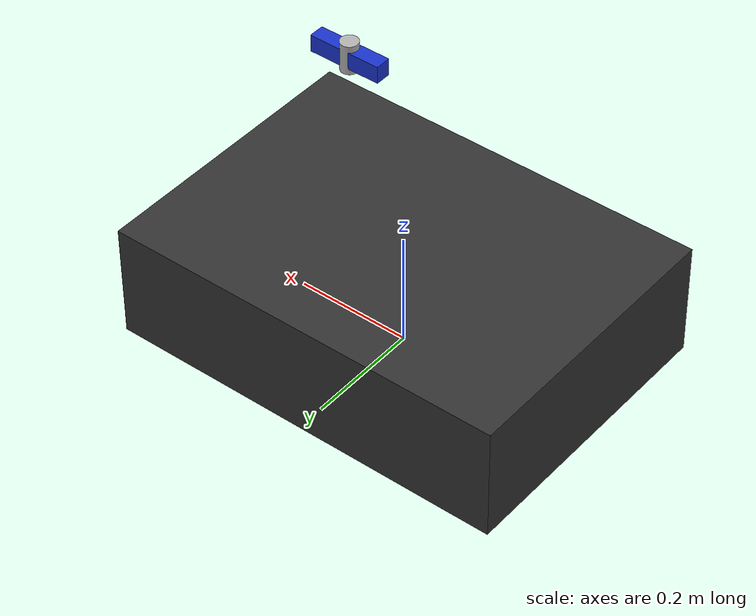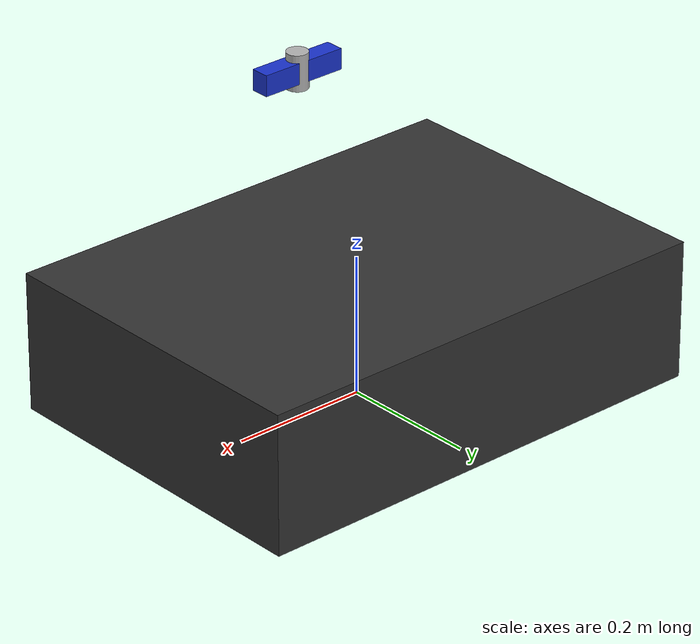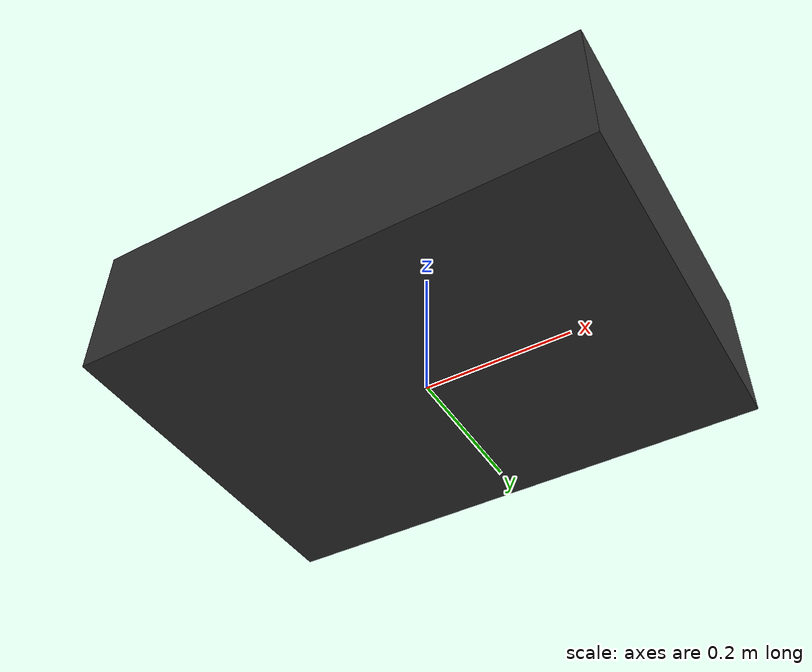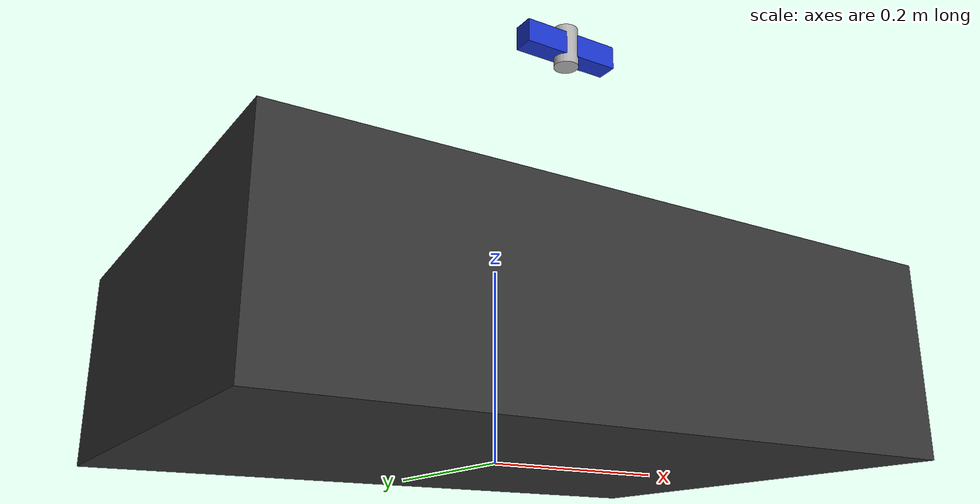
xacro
<?xml version="1.0"?>
<robot xmlns:xacro="http://www.ros.org/wiki/xacro" name="yardbot">

  <!-- ═══════════════════════════════════════════
       PARAMETERS  (easy to tweak in one place)
       ═══════════════════════════════════════════ -->

  <!-- Robot footprint (approximate lawnmower-scale placeholder) -->
  <xacro:property name="base_length"  value="0.70"/>   <!-- m, front-back -->
  <xacro:property name="base_width"   value="0.50"/>   <!-- m, left-right  -->
  <xacro:property name="base_height"  value="0.20"/>   <!-- m, vertical    -->

  <!-- Camera mount position relative to base_link -->
  <xacro:property name="cam_x"    value="0.10"/>  <!-- forward of centre  -->
  <xacro:property name="cam_y"    value="0.0"/>   <!-- centred            -->
  <xacro:property name="cam_z"    value="0.50"/>  <!-- height above ground -->

  <!-- Camera body size (D455 approximate) -->
  <xacro:property name="cam_l"    value="0.124"/>
  <xacro:property name="cam_w"    value="0.026"/>
  <xacro:property name="cam_h"    value="0.029"/>

  <!-- ═══════════════════════════════════════════
       MATERIALS
       ═══════════════════════════════════════════ -->

  <material name="dark_grey">
    <color rgba="0.2 0.2 0.2 1.0"/>
  </material>

  <material name="light_grey">
    <color rgba="0.7 0.7 0.7 1.0"/>
  </material>

  <material name="realsense_blue">
    <color rgba="0.1 0.2 0.8 1.0"/>
  </material>

  <link name="base_link">
    <visual>
      <origin xyz="0 0 ${base_height/2}" rpy="0 0 0"/>
      <geometry>
        <box size="${base_length} ${base_width} ${base_height}"/>
      </geometry>
      <material name="dark_grey"/>
    </visual>
    <collision>
      <origin xyz="0 0 ${base_height/2}" rpy="0 0 0"/>
      <geometry>
        <box size="${base_length} ${base_width} ${base_height}"/>
      </geometry>
    </collision>
    <inertial>
      <!-- Rough placeholder mass/inertia for a ~15 kg robot body -->
      <mass value="15.0"/>
      <origin xyz="0 0 ${base_height/2}"/>
      <inertia ixx="0.30" ixy="0" ixz="0"
                          iyy="0.40" iyz="0"
                                     izz="0.60"/>
    </inertial>
  </link>

  <link name="camera_mount_link">
    <visual>
      <origin xyz="0 0 0" rpy="0 0 0"/>
      <geometry>
        <cylinder radius="0.015" length="0.05"/>
      </geometry>
      <material name="light_grey"/>
    </visual>
  </link>

  <joint name="camera_mount_joint" type="fixed">
    <parent link="base_link"/>
    <child  link="camera_mount_link"/>
    <!-- Position: forward of centre, at camera height, plus half the mount height -->
    <origin xyz="${cam_x} ${cam_y} ${cam_z}" rpy="0 0 0"/>
  </joint>

  <link name="camera_link">
    <visual>
      <origin xyz="0 0 0" rpy="0 0 0"/>
      <geometry>
        <box size="${cam_l} ${cam_w} ${cam_h}"/>
      </geometry>
      <material name="realsense_blue"/>
    </visual>
    <collision>
      <origin xyz="0 0 0" rpy="0 0 0"/>
      <geometry>
        <box size="${cam_l} ${cam_w} ${cam_h}"/>
      </geometry>
    </collision>
    <inertial>
      <mass value="0.072"/>
      <inertia ixx="0.0001" ixy="0" ixz="0"
                            iyy="0.0001" iyz="0"
                                         izz="0.0001"/>
    </inertial>
  </link>

  <joint name="camera_joint" type="fixed">
    <parent link="camera_mount_link"/>
    <child  link="camera_link"/>
    <!--
      No additional offset; camera_link sits at camera_mount_link.
      The RealSense driver will publish the transforms from
      camera_link → camera_depth_optical_frame etc. automatically.
    -->
    <origin xyz="0 0 0" rpy="0 0 0"/>
  </joint>

</robot>
